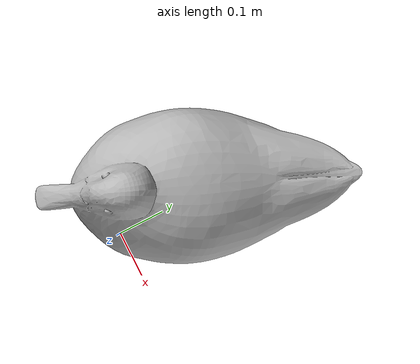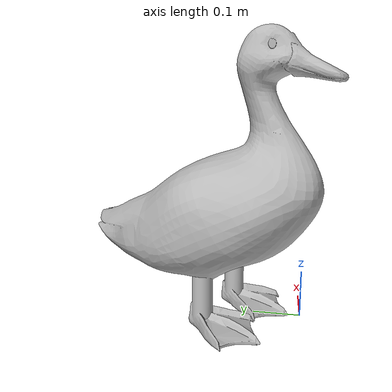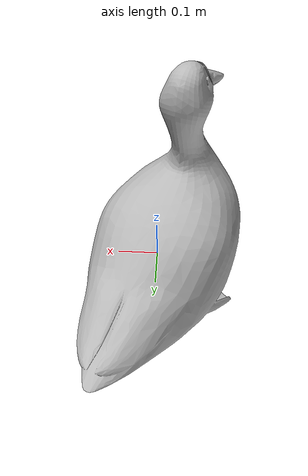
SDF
<?xml version="1.0" ?>
<sdf version="1.6">
  <model name="duck">
    <static>true</static>
    <link name="duck_link">
      <visual name="duck_visual">
        <geometry>
          <mesh>
            <uri>model://RS1/Models/Animal_Models/duck/meshes/duck.stl</uri>

            <scale>0.01 0.01 0.01</scale>
          </mesh>
        </geometry>
      </visual>
      <collision name="duck_collision">
        <geometry>
          <mesh>
            <uri>model://RS1/Models/Animal_Models/duck/meshes/duck.stl</uri>
            <scale>0.01 0.01 0.01</scale>
          </mesh>
        </geometry>
      </collision>
    </link>
  </model>
</sdf>
